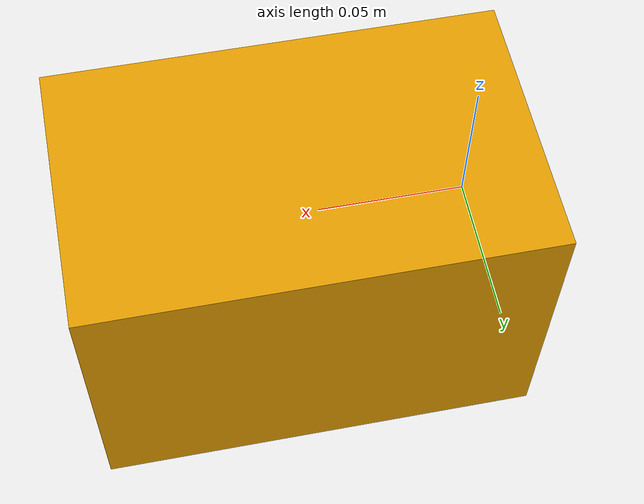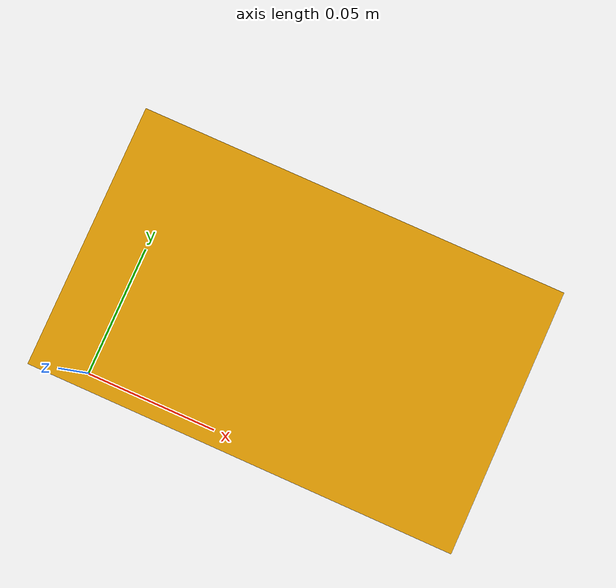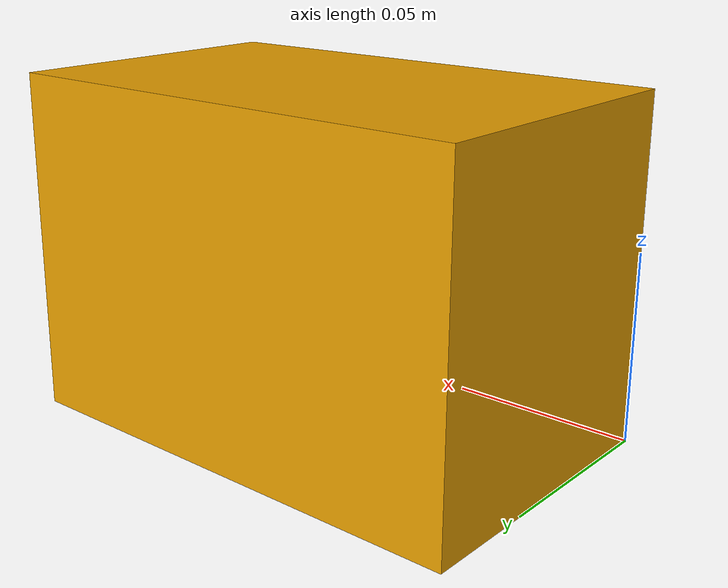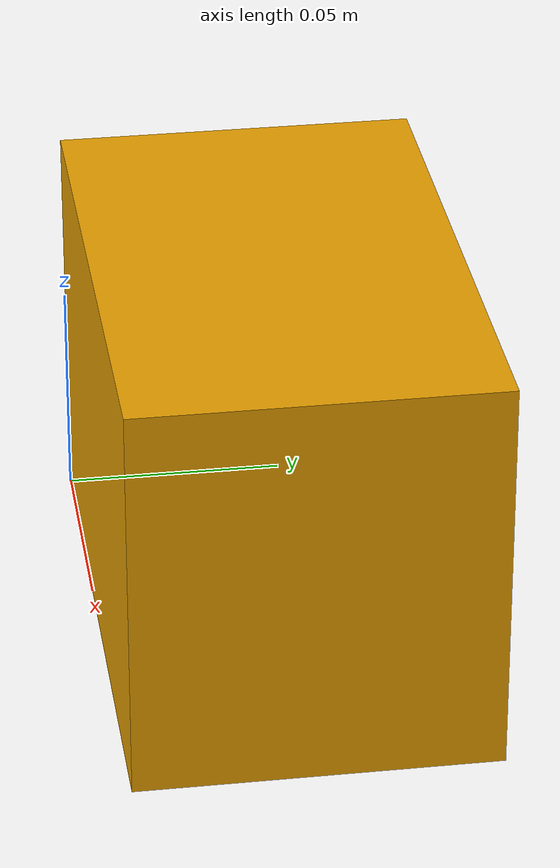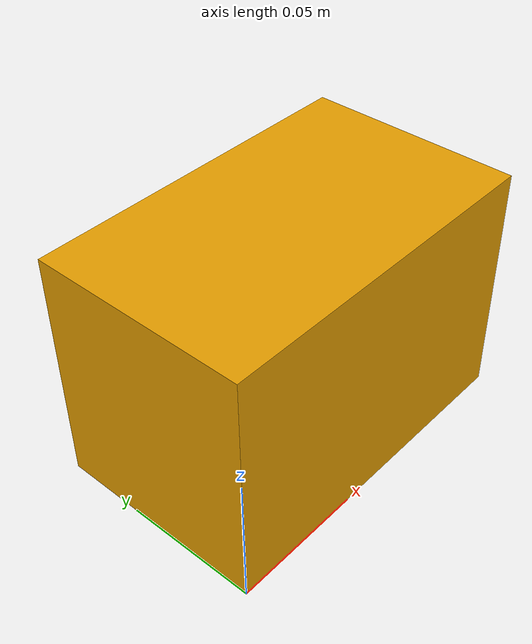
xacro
<?xml version="1.0" ?>
<robot name="picking_box" xmlns:xacro="http://www.ros.org/wiki/xacro">
  <link name="picking_box">
    <visual>
      <origin rpy="0 0 0" xyz="0 0 0"/>
      <geometry>
        <mesh filename="package://birl_baxter_description/urdf/box/picking_box/picking_box.STL"/>
      </geometry>
    </visual>
    <collision>
      <origin rpy="0 0 0" xyz="0 0 0"/>
      <geometry>
        <mesh filename="package://birl_baxter_description/urdf/box/picking_box/picking_box.STL"/>
      </geometry>
    </collision>
    <inertial>
      <origin rpy="0 0 0" xyz="0 0 0"/>
      <mass value="0.05"/>
      <inertia ixx="0.001" ixy="0.00103417" ixz="0.80199628" iyy="6.08689388" iyz="0.00105311" izz="4.96191932"/>
    </inertial>
  </link>
  <gazebo reference="picking_box">
    <self_collide>1</self_collide>
    <mu1>1000000</mu1>
    <mu2>1000000</mu2>
    <fdir1>0.0 0.0 1.0</fdir1>
    <kp>1e5</kp>
    <kd>1.0</kd>
  </gazebo>

</robot>
